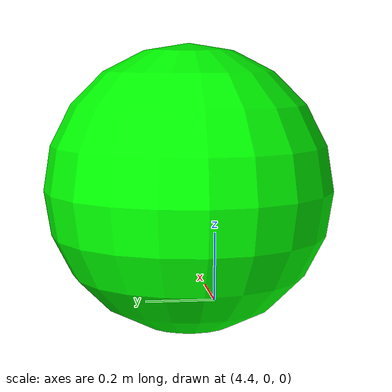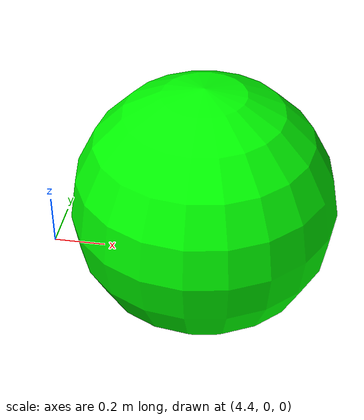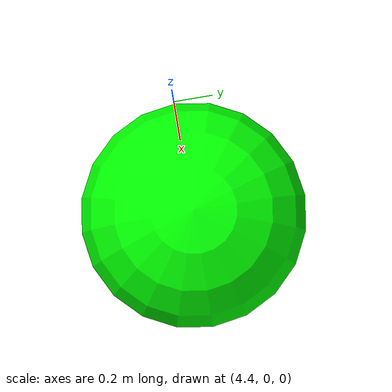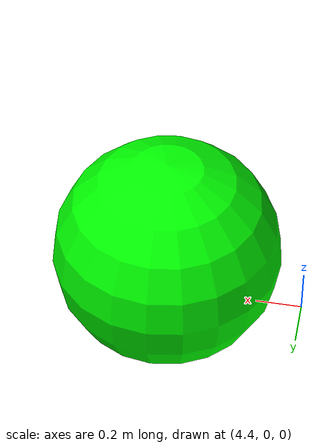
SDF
<?xml version="1.0" ?>
<sdf version="1.6">

<model name="green_sphere">

  <static>true</static>

  <pose>5 0 0.25 0 0 0</pose>

  <link name="link">

    <collision name="collision">
      <geometry>
        <sphere>
          <radius>0.5</radius>
        </sphere>
      </geometry>
    </collision>

    <visual name="visual">

      <geometry>
        <sphere>
          <radius>0.5</radius>
        </sphere>
      </geometry>

      <material>
        <ambient>0 1 0 1</ambient>
        <diffuse>0 1 0 1</diffuse>
      </material>

    </visual>

  </link>

</model>

</sdf>
